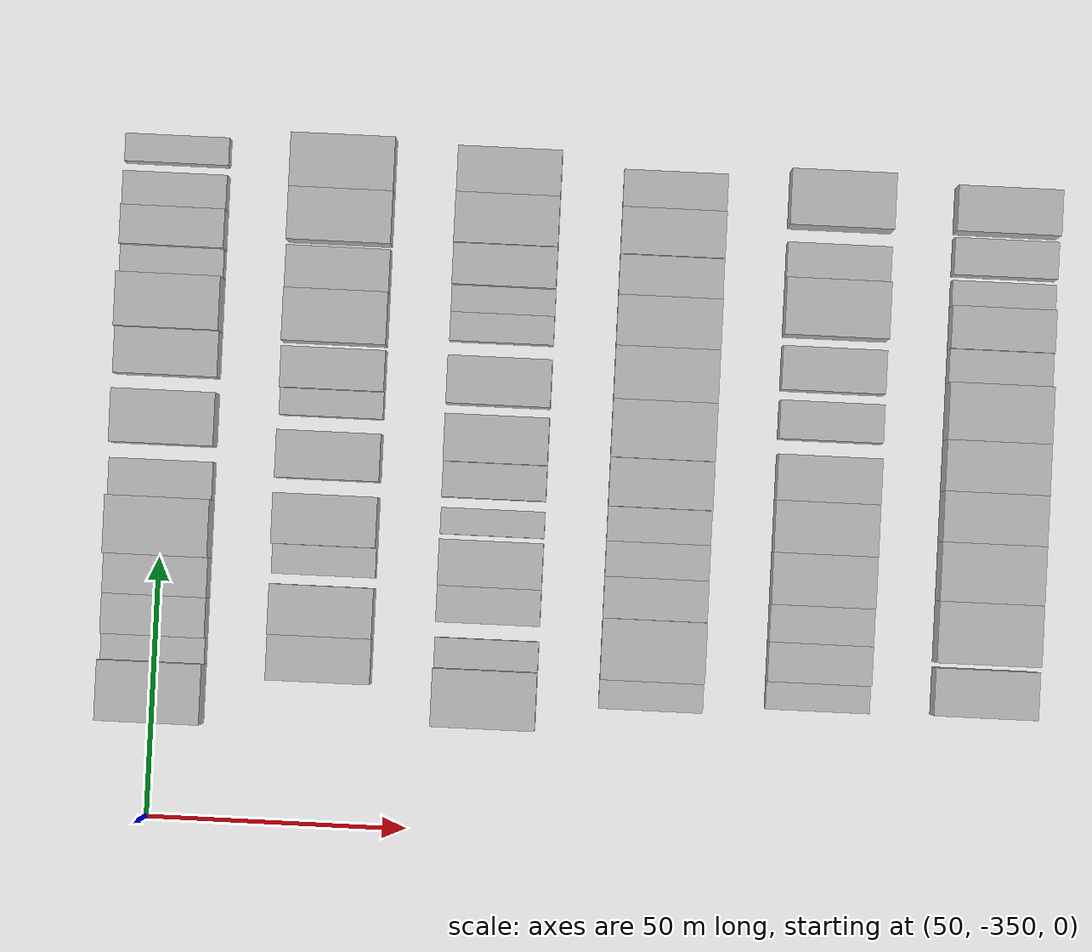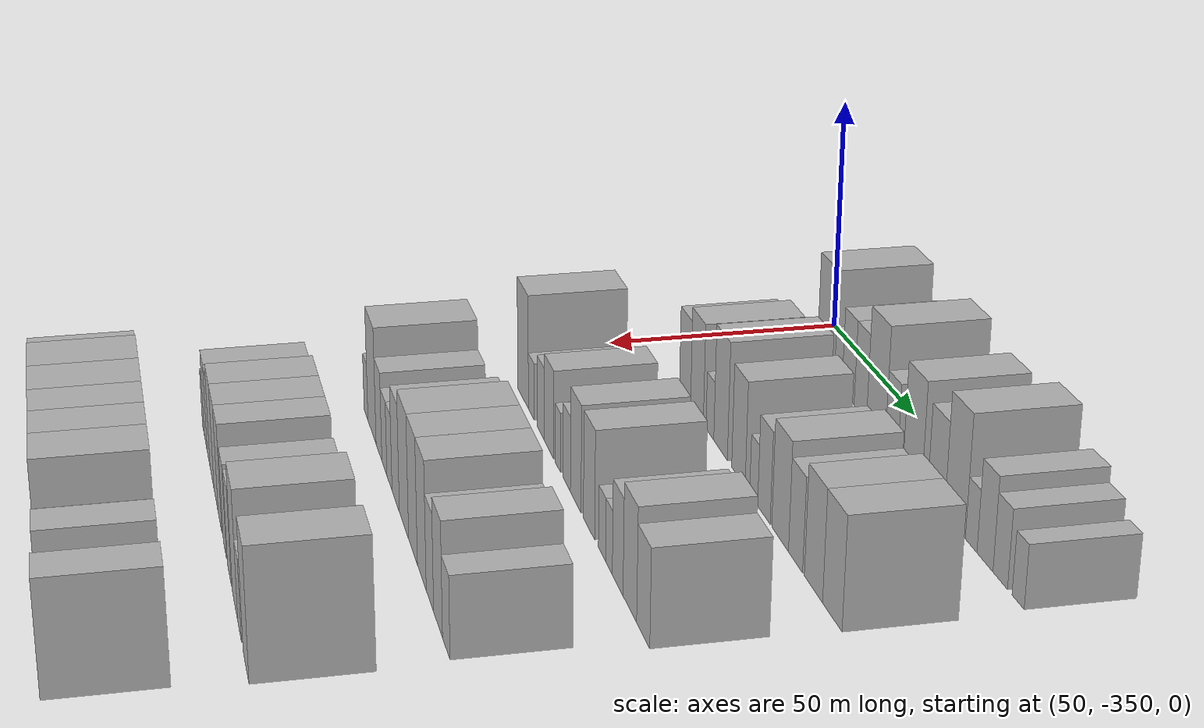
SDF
<sdf version="1.6">
 <world name="default">
  <model name="building_24">
   <static>1</static>
   <pose>50.0000 -325.7760 0 0.000000 0.000000 0.000000</pose>
   <link name="link">
    <pose>0 0 12.00 0 0 0</pose>
    <collision name="collision"><geometry><box><size>20.0000 11.5945 24.0000</size></box></geometry></collision>
    <visual name="visual">
     <cast_shadows>0</cast_shadows>
     <geometry><box><size>20.0000 11.5945 24.0000</size></box></geometry>
     <material>
      <script>
       <uri>model://HANNAS_wall/materials/scripts</uri>
       <uri>model://HANNAS_wall/materials/textures</uri>
       <name>vrc/HANNAS_wall</name>
      </script>
     </material>
    </visual>
   </link>
  </model>
  <model name="building_25">
   <static>1</static>
   <pose>50.0000 -317.4945 0 0.000000 0.000000 0.000000</pose>
   <link name="link">
    <pose>0 0 6.00 0 0 0</pose>
    <collision name="collision"><geometry><box><size>20.0000 4.9685 12.0000</size></box></geometry></collision>
    <visual name="visual">
     <cast_shadows>0</cast_shadows>
     <geometry><box><size>20.0000 4.9685 12.0000</size></box></geometry>
     <material>
      <script>
       <uri>model://HANNAS_wall/materials/scripts</uri>
       <uri>model://HANNAS_wall/materials/textures</uri>
       <name>vrc/HANNAS_wall</name>
      </script>
     </material>
    </visual>
   </link>
  </model>
  <model name="building_26">
   <static>1</static>
   <pose>50.0000 -311.1380 0 0.000000 0.000000 0.000000</pose>
   <link name="link">
    <pose>0 0 9.00 0 0 0</pose>
    <collision name="collision"><geometry><box><size>20.0000 7.7444 18.0000</size></box></geometry></collision>
    <visual name="visual">
     <cast_shadows>0</cast_shadows>
     <geometry><box><size>20.0000 7.7444 18.0000</size></box></geometry>
     <material>
      <script>
       <uri>model://HANNAS_wall/materials/scripts</uri>
       <uri>model://HANNAS_wall/materials/textures</uri>
       <name>vrc/HANNAS_wall</name>
      </script>
     </material>
    </visual>
   </link>
  </model>
  <model name="building_27">
   <static>1</static>
   <pose>50.0000 -303.4338 0 0.000000 0.000000 0.000000</pose>
   <link name="link">
    <pose>0 0 9.00 0 0 0</pose>
    <collision name="collision"><geometry><box><size>20.0000 7.6640 18.0000</size></box></geometry></collision>
    <visual name="visual">
     <cast_shadows>0</cast_shadows>
     <geometry><box><size>20.0000 7.6640 18.0000</size></box></geometry>
     <material>
      <script>
       <uri>model://HANNAS_wall/materials/scripts</uri>
       <uri>model://HANNAS_wall/materials/textures</uri>
       <name>vrc/HANNAS_wall</name>
      </script>
     </material>
    </visual>
   </link>
  </model>
  <model name="building_28">
   <static>1</static>
   <pose>50.0000 -294.0374 0 0.000000 0.000000 0.000000</pose>
   <link name="link">
    <pose>0 0 12.00 0 0 0</pose>
    <collision name="collision"><geometry><box><size>20.0000 11.1289 24.0000</size></box></geometry></collision>
    <visual name="visual">
     <cast_shadows>0</cast_shadows>
     <geometry><box><size>20.0000 11.1289 24.0000</size></box></geometry>
     <material>
      <script>
       <uri>model://HANNAS_wall/materials/scripts</uri>
       <uri>model://HANNAS_wall/materials/textures</uri>
       <name>vrc/HANNAS_wall</name>
      </script>
     </material>
    </visual>
   </link>
  </model>
  <model name="building_29">
   <static>1</static>
   <pose>50.0000 -284.8770 0 0.000000 0.000000 0.000000</pose>
   <link name="link">
    <pose>0 0 7.50 0 0 0</pose>
    <collision name="collision"><geometry><box><size>20.0000 7.1919 15.0000</size></box></geometry></collision>
    <visual name="visual">
     <cast_shadows>0</cast_shadows>
     <geometry><box><size>20.0000 7.1919 15.0000</size></box></geometry>
     <material>
      <script>
       <uri>model://HANNAS_wall/materials/scripts</uri>
       <uri>model://HANNAS_wall/materials/textures</uri>
       <name>vrc/HANNAS_wall</name>
      </script>
     </material>
    </visual>
   </link>
  </model>
  <model name="building_30">
   <static>1</static>
   <pose>50.0000 -273.1539 0 0.000000 0.000000 0.000000</pose>
   <link name="link">
    <pose>0 0 10.50 0 0 0</pose>
    <collision name="collision"><geometry><box><size>20.0000 10.2542 21.0000</size></box></geometry></collision>
    <visual name="visual">
     <cast_shadows>0</cast_shadows>
     <geometry><box><size>20.0000 10.2542 21.0000</size></box></geometry>
     <material>
      <script>
       <uri>model://HANNAS_wall/materials/scripts</uri>
       <uri>model://HANNAS_wall/materials/textures</uri>
       <name>vrc/HANNAS_wall</name>
      </script>
     </material>
    </visual>
   </link>
  </model>
  <model name="building_31">
   <static>1</static>
   <pose>50.0000 -260.6110 0 0.000000 0.000000 0.000000</pose>
   <link name="link">
    <pose>0 0 9.00 0 0 0</pose>
    <collision name="collision"><geometry><box><size>20.0000 8.8316 18.0000</size></box></geometry></collision>
    <visual name="visual">
     <cast_shadows>0</cast_shadows>
     <geometry><box><size>20.0000 8.8316 18.0000</size></box></geometry>
     <material>
      <script>
       <uri>model://HANNAS_wall/materials/scripts</uri>
       <uri>model://HANNAS_wall/materials/textures</uri>
       <name>vrc/HANNAS_wall</name>
      </script>
     </material>
    </visual>
   </link>
  </model>
  <model name="building_32">
   <static>1</static>
   <pose>50.0000 -251.0286 0 0.000000 0.000000 0.000000</pose>
   <link name="link">
    <pose>0 0 12.00 0 0 0</pose>
    <collision name="collision"><geometry><box><size>20.0000 10.3332 24.0000</size></box></geometry></collision>
    <visual name="visual">
     <cast_shadows>0</cast_shadows>
     <geometry><box><size>20.0000 10.3332 24.0000</size></box></geometry>
     <material>
      <script>
       <uri>model://HANNAS_wall/materials/scripts</uri>
       <uri>model://HANNAS_wall/materials/textures</uri>
       <name>vrc/HANNAS_wall</name>
      </script>
     </material>
    </visual>
   </link>
  </model>
  <model name="building_33">
   <static>1</static>
   <pose>50.0000 -243.0790 0 0.000000 0.000000 0.000000</pose>
   <link name="link">
    <pose>0 0 6.00 0 0 0</pose>
    <collision name="collision"><geometry><box><size>20.0000 5.5659 12.0000</size></box></geometry></collision>
    <visual name="visual">
     <cast_shadows>0</cast_shadows>
     <geometry><box><size>20.0000 5.5659 12.0000</size></box></geometry>
     <material>
      <script>
       <uri>model://HANNAS_wall/materials/scripts</uri>
       <uri>model://HANNAS_wall/materials/textures</uri>
       <name>vrc/HANNAS_wall</name>
      </script>
     </material>
    </visual>
   </link>
  </model>
  <model name="building_34">
   <static>1</static>
   <pose>50.0000 -236.5503 0 0.000000 0.000000 0.000000</pose>
   <link name="link">
    <pose>0 0 9.00 0 0 0</pose>
    <collision name="collision"><geometry><box><size>20.0000 7.4915 18.0000</size></box></geometry></collision>
    <visual name="visual">
     <cast_shadows>0</cast_shadows>
     <geometry><box><size>20.0000 7.4915 18.0000</size></box></geometry>
     <material>
      <script>
       <uri>model://HANNAS_wall/materials/scripts</uri>
       <uri>model://HANNAS_wall/materials/textures</uri>
       <name>vrc/HANNAS_wall</name>
      </script>
     </material>
    </visual>
   </link>
  </model>
  <model name="building_35">
   <static>1</static>
   <pose>50.0000 -229.5090 0 0.000000 0.000000 0.000000</pose>
   <link name="link">
    <pose>0 0 7.50 0 0 0</pose>
    <collision name="collision"><geometry><box><size>20.0000 6.5911 15.0000</size></box></geometry></collision>
    <visual name="visual">
     <cast_shadows>0</cast_shadows>
     <geometry><box><size>20.0000 6.5911 15.0000</size></box></geometry>
     <material>
      <script>
       <uri>model://HANNAS_wall/materials/scripts</uri>
       <uri>model://HANNAS_wall/materials/textures</uri>
       <name>vrc/HANNAS_wall</name>
      </script>
     </material>
    </visual>
   </link>
  </model>
  <model name="building_36">
   <static>1</static>
   <pose>50.0000 -221.5522 0 0.000000 0.000000 0.000000</pose>
   <link name="link">
    <pose>0 0 6.00 0 0 0</pose>
    <collision name="collision"><geometry><box><size>20.0000 5.3224 12.0000</size></box></geometry></collision>
    <visual name="visual">
     <cast_shadows>0</cast_shadows>
     <geometry><box><size>20.0000 5.3224 12.0000</size></box></geometry>
     <material>
      <script>
       <uri>model://HANNAS_wall/materials/scripts</uri>
       <uri>model://HANNAS_wall/materials/textures</uri>
       <name>vrc/HANNAS_wall</name>
      </script>
     </material>
    </visual>
   </link>
  </model>
  <model name="building_147">
   <static>1</static>
   <pose>82.0000 -318.0060 0 0.000000 0.000000 0.000000</pose>
   <link name="link">
    <pose>0 0 9.00 0 0 0</pose>
    <collision name="collision"><geometry><box><size>20.0000 8.7626 18.0000</size></box></geometry></collision>
    <visual name="visual">
     <cast_shadows>0</cast_shadows>
     <geometry><box><size>20.0000 8.7626 18.0000</size></box></geometry>
     <material>
      <script>
       <uri>model://HANNAS_wall/materials/scripts</uri>
       <uri>model://HANNAS_wall/materials/textures</uri>
       <name>vrc/HANNAS_wall</name>
      </script>
     </material>
    </visual>
   </link>
  </model>
  <model name="building_148">
   <static>1</static>
   <pose>82.0000 -308.7873 0 0.000000 0.000000 0.000000</pose>
   <link name="link">
    <pose>0 0 10.50 0 0 0</pose>
    <collision name="collision"><geometry><box><size>20.0000 9.6747 21.0000</size></box></geometry></collision>
    <visual name="visual">
     <cast_shadows>0</cast_shadows>
     <geometry><box><size>20.0000 9.6747 21.0000</size></box></geometry>
     <material>
      <script>
       <uri>model://HANNAS_wall/materials/scripts</uri>
       <uri>model://HANNAS_wall/materials/textures</uri>
       <name>vrc/HANNAS_wall</name>
      </script>
     </material>
    </visual>
   </link>
  </model>
  <model name="building_149">
   <static>1</static>
   <pose>82.0000 -299.0927 0 0.000000 0.000000 0.000000</pose>
   <link name="link">
    <pose>0 0 6.00 0 0 0</pose>
    <collision name="collision"><geometry><box><size>20.0000 5.7146 12.0000</size></box></geometry></collision>
    <visual name="visual">
     <cast_shadows>0</cast_shadows>
     <geometry><box><size>20.0000 5.7146 12.0000</size></box></geometry>
     <material>
      <script>
       <uri>model://HANNAS_wall/materials/scripts</uri>
       <uri>model://HANNAS_wall/materials/textures</uri>
       <name>vrc/HANNAS_wall</name>
      </script>
     </material>
    </visual>
   </link>
  </model>
  <model name="building_150">
   <static>1</static>
   <pose>82.0000 -291.3906 0 0.000000 0.000000 0.000000</pose>
   <link name="link">
    <pose>0 0 12.00 0 0 0</pose>
    <collision name="collision"><geometry><box><size>20.0000 9.6897 24.0000</size></box></geometry></collision>
    <visual name="visual">
     <cast_shadows>0</cast_shadows>
     <geometry><box><size>20.0000 9.6897 24.0000</size></box></geometry>
     <material>
      <script>
       <uri>model://HANNAS_wall/materials/scripts</uri>
       <uri>model://HANNAS_wall/materials/textures</uri>
       <name>vrc/HANNAS_wall</name>
      </script>
     </material>
    </visual>
   </link>
  </model>
  <model name="building_151">
   <static>1</static>
   <pose>82.0000 -278.9891 0 0.000000 0.000000 0.000000</pose>
   <link name="link">
    <pose>0 0 10.50 0 0 0</pose>
    <collision name="collision"><geometry><box><size>20.0000 9.1133 21.0000</size></box></geometry></collision>
    <visual name="visual">
     <cast_shadows>0</cast_shadows>
     <geometry><box><size>20.0000 9.1133 21.0000</size></box></geometry>
     <material>
      <script>
       <uri>model://HANNAS_wall/materials/scripts</uri>
       <uri>model://HANNAS_wall/materials/textures</uri>
       <name>vrc/HANNAS_wall</name>
      </script>
     </material>
    </visual>
   </link>
  </model>
  <model name="building_152">
   <static>1</static>
   <pose>82.0000 -268.8483 0 0.000000 0.000000 0.000000</pose>
   <link name="link">
    <pose>0 0 6.00 0 0 0</pose>
    <collision name="collision"><geometry><box><size>20.0000 5.1683 12.0000</size></box></geometry></collision>
    <visual name="visual">
     <cast_shadows>0</cast_shadows>
     <geometry><box><size>20.0000 5.1683 12.0000</size></box></geometry>
     <material>
      <script>
       <uri>model://HANNAS_wall/materials/scripts</uri>
       <uri>model://HANNAS_wall/materials/textures</uri>
       <name>vrc/HANNAS_wall</name>
      </script>
     </material>
    </visual>
   </link>
  </model>
  <model name="building_153">
   <static>1</static>
   <pose>82.0000 -262.3096 0 0.000000 0.000000 0.000000</pose>
   <link name="link">
    <pose>0 0 9.00 0 0 0</pose>
    <collision name="collision"><geometry><box><size>20.0000 7.9090 18.0000</size></box></geometry></collision>
    <visual name="visual">
     <cast_shadows>0</cast_shadows>
     <geometry><box><size>20.0000 7.9090 18.0000</size></box></geometry>
     <material>
      <script>
       <uri>model://HANNAS_wall/materials/scripts</uri>
       <uri>model://HANNAS_wall/materials/textures</uri>
       <name>vrc/HANNAS_wall</name>
      </script>
     </material>
    </visual>
   </link>
  </model>
  <model name="building_154">
   <static>1</static>
   <pose>82.0000 -252.2941 0 0.000000 0.000000 0.000000</pose>
   <link name="link">
    <pose>0 0 10.50 0 0 0</pose>
    <collision name="collision"><geometry><box><size>20.0000 10.1221 21.0000</size></box></geometry></collision>
    <visual name="visual">
     <cast_shadows>0</cast_shadows>
     <geometry><box><size>20.0000 10.1221 21.0000</size></box></geometry>
     <material>
      <script>
       <uri>model://HANNAS_wall/materials/scripts</uri>
       <uri>model://HANNAS_wall/materials/textures</uri>
       <name>vrc/HANNAS_wall</name>
      </script>
     </material>
    </visual>
   </link>
  </model>
  <model name="building_155">
   <static>1</static>
   <pose>82.0000 -243.1228 0 0.000000 0.000000 0.000000</pose>
   <link name="link">
    <pose>0 0 9.00 0 0 0</pose>
    <collision name="collision"><geometry><box><size>20.0000 8.2204 18.0000</size></box></geometry></collision>
    <visual name="visual">
     <cast_shadows>0</cast_shadows>
     <geometry><box><size>20.0000 8.2204 18.0000</size></box></geometry>
     <material>
      <script>
       <uri>model://HANNAS_wall/materials/scripts</uri>
       <uri>model://HANNAS_wall/materials/textures</uri>
       <name>vrc/HANNAS_wall</name>
      </script>
     </material>
    </visual>
   </link>
  </model>
  <model name="building_156">
   <static>1</static>
   <pose>82.0000 -232.9565 0 0.000000 0.000000 0.000000</pose>
   <link name="link">
    <pose>0 0 10.50 0 0 0</pose>
    <collision name="collision"><geometry><box><size>20.0000 10.1122 21.0000</size></box></geometry></collision>
    <visual name="visual">
     <cast_shadows>0</cast_shadows>
     <geometry><box><size>20.0000 10.1122 21.0000</size></box></geometry>
     <material>
      <script>
       <uri>model://HANNAS_wall/materials/scripts</uri>
       <uri>model://HANNAS_wall/materials/textures</uri>
       <name>vrc/HANNAS_wall</name>
      </script>
     </material>
    </visual>
   </link>
  </model>
  <model name="building_157">
   <static>1</static>
   <pose>82.0000 -222.7397 0 0.000000 0.000000 0.000000</pose>
   <link name="link">
    <pose>0 0 10.50 0 0 0</pose>
    <collision name="collision"><geometry><box><size>20.0000 10.3216 21.0000</size></box></geometry></collision>
    <visual name="visual">
     <cast_shadows>0</cast_shadows>
     <geometry><box><size>20.0000 10.3216 21.0000</size></box></geometry>
     <material>
      <script>
       <uri>model://HANNAS_wall/materials/scripts</uri>
       <uri>model://HANNAS_wall/materials/textures</uri>
       <name>vrc/HANNAS_wall</name>
      </script>
     </material>
    </visual>
   </link>
  </model>
  <model name="building_269">
   <static>1</static>
   <pose>114.0000 -324.0901 0 0.000000 0.000000 0.000000</pose>
   <link name="link">
    <pose>0 0 12.00 0 0 0</pose>
    <collision name="collision"><geometry><box><size>20.0000 11.1359 24.0000</size></box></geometry></collision>
    <visual name="visual">
     <cast_shadows>0</cast_shadows>
     <geometry><box><size>20.0000 11.1359 24.0000</size></box></geometry>
     <material>
      <script>
       <uri>model://HANNAS_wall/materials/scripts</uri>
       <uri>model://HANNAS_wall/materials/textures</uri>
       <name>vrc/HANNAS_wall</name>
      </script>
     </material>
    </visual>
   </link>
  </model>
  <model name="building_270">
   <static>1</static>
   <pose>114.0000 -315.6091 0 0.000000 0.000000 0.000000</pose>
   <link name="link">
    <pose>0 0 6.00 0 0 0</pose>
    <collision name="collision"><geometry><box><size>20.0000 5.8260 12.0000</size></box></geometry></collision>
    <visual name="visual">
     <cast_shadows>0</cast_shadows>
     <geometry><box><size>20.0000 5.8260 12.0000</size></box></geometry>
     <material>
      <script>
       <uri>model://HANNAS_wall/materials/scripts</uri>
       <uri>model://HANNAS_wall/materials/textures</uri>
       <name>vrc/HANNAS_wall</name>
      </script>
     </material>
    </visual>
   </link>
  </model>
  <model name="building_271">
   <static>1</static>
   <pose>114.0000 -306.1959 0 0.000000 0.000000 0.000000</pose>
   <link name="link">
    <pose>0 0 7.50 0 0 0</pose>
    <collision name="collision"><geometry><box><size>20.0000 7.0005 15.0000</size></box></geometry></collision>
    <visual name="visual">
     <cast_shadows>0</cast_shadows>
     <geometry><box><size>20.0000 7.0005 15.0000</size></box></geometry>
     <material>
      <script>
       <uri>model://HANNAS_wall/materials/scripts</uri>
       <uri>model://HANNAS_wall/materials/textures</uri>
       <name>vrc/HANNAS_wall</name>
      </script>
     </material>
    </visual>
   </link>
  </model>
  <model name="building_272">
   <static>1</static>
   <pose>114.0000 -298.2511 0 0.000000 0.000000 0.000000</pose>
   <link name="link">
    <pose>0 0 9.00 0 0 0</pose>
    <collision name="collision"><geometry><box><size>20.0000 8.8891 18.0000</size></box></geometry></collision>
    <visual name="visual">
     <cast_shadows>0</cast_shadows>
     <geometry><box><size>20.0000 8.8891 18.0000</size></box></geometry>
     <material>
      <script>
       <uri>model://HANNAS_wall/materials/scripts</uri>
       <uri>model://HANNAS_wall/materials/textures</uri>
       <name>vrc/HANNAS_wall</name>
      </script>
     </material>
    </visual>
   </link>
  </model>
  <model name="building_273">
   <static>1</static>
   <pose>114.0000 -290.2604 0 0.000000 0.000000 0.000000</pose>
   <link name="link">
    <pose>0 0 6.00 0 0 0</pose>
    <collision name="collision"><geometry><box><size>20.0000 5.0923 12.0000</size></box></geometry></collision>
    <visual name="visual">
     <cast_shadows>0</cast_shadows>
     <geometry><box><size>20.0000 5.0923 12.0000</size></box></geometry>
     <material>
      <script>
       <uri>model://HANNAS_wall/materials/scripts</uri>
       <uri>model://HANNAS_wall/materials/textures</uri>
       <name>vrc/HANNAS_wall</name>
      </script>
     </material>
    </visual>
   </link>
  </model>
  <model name="building_274">
   <static>1</static>
   <pose>114.0000 -282.3144 0 0.000000 0.000000 0.000000</pose>
   <link name="link">
    <pose>0 0 7.50 0 0 0</pose>
    <collision name="collision"><geometry><box><size>20.0000 6.7995 15.0000</size></box></geometry></collision>
    <visual name="visual">
     <cast_shadows>0</cast_shadows>
     <geometry><box><size>20.0000 6.7995 15.0000</size></box></geometry>
     <material>
      <script>
       <uri>model://HANNAS_wall/materials/scripts</uri>
       <uri>model://HANNAS_wall/materials/textures</uri>
       <name>vrc/HANNAS_wall</name>
      </script>
     </material>
    </visual>
   </link>
  </model>
  <model name="building_275">
   <static>1</static>
   <pose>114.0000 -274.3603 0 0.000000 0.000000 0.000000</pose>
   <link name="link">
    <pose>0 0 10.50 0 0 0</pose>
    <collision name="collision"><geometry><box><size>20.0000 9.1087 21.0000</size></box></geometry></collision>
    <visual name="visual">
     <cast_shadows>0</cast_shadows>
     <geometry><box><size>20.0000 9.1087 21.0000</size></box></geometry>
     <material>
      <script>
       <uri>model://HANNAS_wall/materials/scripts</uri>
       <uri>model://HANNAS_wall/materials/textures</uri>
       <name>vrc/HANNAS_wall</name>
      </script>
     </material>
    </visual>
   </link>
  </model>
  <model name="building_276">
   <static>1</static>
   <pose>114.0000 -263.2259 0 0.000000 0.000000 0.000000</pose>
   <link name="link">
    <pose>0 0 10.50 0 0 0</pose>
    <collision name="collision"><geometry><box><size>20.0000 9.1601 21.0000</size></box></geometry></collision>
    <visual name="visual">
     <cast_shadows>0</cast_shadows>
     <geometry><box><size>20.0000 9.1601 21.0000</size></box></geometry>
     <material>
      <script>
       <uri>model://HANNAS_wall/materials/scripts</uri>
       <uri>model://HANNAS_wall/materials/textures</uri>
       <name>vrc/HANNAS_wall</name>
      </script>
     </material>
    </visual>
   </link>
  </model>
  <model name="building_277">
   <static>1</static>
   <pose>114.0000 -252.8734 0 0.000000 0.000000 0.000000</pose>
   <link name="link">
    <pose>0 0 6.00 0 0 0</pose>
    <collision name="collision"><geometry><box><size>20.0000 5.5448 12.0000</size></box></geometry></collision>
    <visual name="visual">
     <cast_shadows>0</cast_shadows>
     <geometry><box><size>20.0000 5.5448 12.0000</size></box></geometry>
     <material>
      <script>
       <uri>model://HANNAS_wall/materials/scripts</uri>
       <uri>model://HANNAS_wall/materials/textures</uri>
       <name>vrc/HANNAS_wall</name>
      </script>
     </material>
    </visual>
   </link>
  </model>
  <model name="building_278">
   <static>1</static>
   <pose>114.0000 -247.5273 0 0.000000 0.000000 0.000000</pose>
   <link name="link">
    <pose>0 0 6.00 0 0 0</pose>
    <collision name="collision"><geometry><box><size>20.0000 5.1475 12.0000</size></box></geometry></collision>
    <visual name="visual">
     <cast_shadows>0</cast_shadows>
     <geometry><box><size>20.0000 5.1475 12.0000</size></box></geometry>
     <material>
      <script>
       <uri>model://HANNAS_wall/materials/scripts</uri>
       <uri>model://HANNAS_wall/materials/textures</uri>
       <name>vrc/HANNAS_wall</name>
      </script>
     </material>
    </visual>
   </link>
  </model>
  <model name="building_279">
   <static>1</static>
   <pose>114.0000 -240.9968 0 0.000000 0.000000 0.000000</pose>
   <link name="link">
    <pose>0 0 9.00 0 0 0</pose>
    <collision name="collision"><geometry><box><size>20.0000 7.9136 18.0000</size></box></geometry></collision>
    <visual name="visual">
     <cast_shadows>0</cast_shadows>
     <geometry><box><size>20.0000 7.9136 18.0000</size></box></geometry>
     <material>
      <script>
       <uri>model://HANNAS_wall/materials/scripts</uri>
       <uri>model://HANNAS_wall/materials/textures</uri>
       <name>vrc/HANNAS_wall</name>
      </script>
     </material>
    </visual>
   </link>
  </model>
  <model name="building_280">
   <static>1</static>
   <pose>114.0000 -232.2082 0 0.000000 0.000000 0.000000</pose>
   <link name="link">
    <pose>0 0 10.50 0 0 0</pose>
    <collision name="collision"><geometry><box><size>20.0000 9.6635 21.0000</size></box></geometry></collision>
    <visual name="visual">
     <cast_shadows>0</cast_shadows>
     <geometry><box><size>20.0000 9.6635 21.0000</size></box></geometry>
     <material>
      <script>
       <uri>model://HANNAS_wall/materials/scripts</uri>
       <uri>model://HANNAS_wall/materials/textures</uri>
       <name>vrc/HANNAS_wall</name>
      </script>
     </material>
    </visual>
   </link>
  </model>
  <model name="building_281">
   <static>1</static>
   <pose>114.0000 -222.9036 0 0.000000 0.000000 0.000000</pose>
   <link name="link">
    <pose>0 0 9.00 0 0 0</pose>
    <collision name="collision"><geometry><box><size>20.0000 8.9457 18.0000</size></box></geometry></collision>
    <visual name="visual">
     <cast_shadows>0</cast_shadows>
     <geometry><box><size>20.0000 8.9457 18.0000</size></box></geometry>
     <material>
      <script>
       <uri>model://HANNAS_wall/materials/scripts</uri>
       <uri>model://HANNAS_wall/materials/textures</uri>
       <name>vrc/HANNAS_wall</name>
      </script>
     </material>
    </visual>
   </link>
  </model>
  <model name="building_383">
   <static>1</static>
   <pose>146.0000 -321.9743 0 0.000000 0.000000 0.000000</pose>
   <link name="link">
    <pose>0 0 6.00 0 0 0</pose>
    <collision name="collision"><geometry><box><size>20.0000 5.6771 12.0000</size></box></geometry></collision>
    <visual name="visual">
     <cast_shadows>0</cast_shadows>
     <geometry><box><size>20.0000 5.6771 12.0000</size></box></geometry>
     <material>
      <script>
       <uri>model://HANNAS_wall/materials/scripts</uri>
       <uri>model://HANNAS_wall/materials/textures</uri>
       <name>vrc/HANNAS_wall</name>
      </script>
     </material>
    </visual>
   </link>
  </model>
  <model name="building_384">
   <static>1</static>
   <pose>146.0000 -313.2667 0 0.000000 0.000000 0.000000</pose>
   <link name="link">
    <pose>0 0 12.00 0 0 0</pose>
    <collision name="collision"><geometry><box><size>20.0000 11.7381 24.0000</size></box></geometry></collision>
    <visual name="visual">
     <cast_shadows>0</cast_shadows>
     <geometry><box><size>20.0000 11.7381 24.0000</size></box></geometry>
     <material>
      <script>
       <uri>model://HANNAS_wall/materials/scripts</uri>
       <uri>model://HANNAS_wall/materials/textures</uri>
       <name>vrc/HANNAS_wall</name>
      </script>
     </material>
    </visual>
   </link>
  </model>
  <model name="building_385">
   <static>1</static>
   <pose>146.0000 -303.4073 0 0.000000 0.000000 0.000000</pose>
   <link name="link">
    <pose>0 0 9.00 0 0 0</pose>
    <collision name="collision"><geometry><box><size>20.0000 7.9807 18.0000</size></box></geometry></collision>
    <visual name="visual">
     <cast_shadows>0</cast_shadows>
     <geometry><box><size>20.0000 7.9807 18.0000</size></box></geometry>
     <material>
      <script>
       <uri>model://HANNAS_wall/materials/scripts</uri>
       <uri>model://HANNAS_wall/materials/textures</uri>
       <name>vrc/HANNAS_wall</name>
      </script>
     </material>
    </visual>
   </link>
  </model>
  <model name="building_386">
   <static>1</static>
   <pose>146.0000 -296.0037 0 0.000000 0.000000 0.000000</pose>
   <link name="link">
    <pose>0 0 7.50 0 0 0</pose>
    <collision name="collision"><geometry><box><size>20.0000 6.8265 15.0000</size></box></geometry></collision>
    <visual name="visual">
     <cast_shadows>0</cast_shadows>
     <geometry><box><size>20.0000 6.8265 15.0000</size></box></geometry>
     <material>
      <script>
       <uri>model://HANNAS_wall/materials/scripts</uri>
       <uri>model://HANNAS_wall/materials/textures</uri>
       <name>vrc/HANNAS_wall</name>
      </script>
     </material>
    </visual>
   </link>
  </model>
  <model name="building_387">
   <static>1</static>
   <pose>146.0000 -289.2825 0 0.000000 0.000000 0.000000</pose>
   <link name="link">
    <pose>0 0 7.50 0 0 0</pose>
    <collision name="collision"><geometry><box><size>20.0000 6.6161 15.0000</size></box></geometry></collision>
    <visual name="visual">
     <cast_shadows>0</cast_shadows>
     <geometry><box><size>20.0000 6.6161 15.0000</size></box></geometry>
     <material>
      <script>
       <uri>model://HANNAS_wall/materials/scripts</uri>
       <uri>model://HANNAS_wall/materials/textures</uri>
       <name>vrc/HANNAS_wall</name>
      </script>
     </material>
    </visual>
   </link>
  </model>
  <model name="building_388">
   <static>1</static>
   <pose>146.0000 -281.3084 0 0.000000 0.000000 0.000000</pose>
   <link name="link">
    <pose>0 0 10.50 0 0 0</pose>
    <collision name="collision"><geometry><box><size>20.0000 9.3321 21.0000</size></box></geometry></collision>
    <visual name="visual">
     <cast_shadows>0</cast_shadows>
     <geometry><box><size>20.0000 9.3321 21.0000</size></box></geometry>
     <material>
      <script>
       <uri>model://HANNAS_wall/materials/scripts</uri>
       <uri>model://HANNAS_wall/materials/textures</uri>
       <name>vrc/HANNAS_wall</name>
      </script>
     </material>
    </visual>
   </link>
  </model>
  <model name="building_389">
   <static>1</static>
   <pose>146.0000 -271.0627 0 0.000000 0.000000 0.000000</pose>
   <link name="link">
    <pose>0 0 12.00 0 0 0</pose>
    <collision name="collision"><geometry><box><size>20.0000 11.1592 24.0000</size></box></geometry></collision>
    <visual name="visual">
     <cast_shadows>0</cast_shadows>
     <geometry><box><size>20.0000 11.1592 24.0000</size></box></geometry>
     <material>
      <script>
       <uri>model://HANNAS_wall/materials/scripts</uri>
       <uri>model://HANNAS_wall/materials/textures</uri>
       <name>vrc/HANNAS_wall</name>
      </script>
     </material>
    </visual>
   </link>
  </model>
  <model name="building_390">
   <static>1</static>
   <pose>146.0000 -260.3905 0 0.000000 0.000000 0.000000</pose>
   <link name="link">
    <pose>0 0 12.00 0 0 0</pose>
    <collision name="collision"><geometry><box><size>20.0000 10.1852 24.0000</size></box></geometry></collision>
    <visual name="visual">
     <cast_shadows>0</cast_shadows>
     <geometry><box><size>20.0000 10.1852 24.0000</size></box></geometry>
     <material>
      <script>
       <uri>model://HANNAS_wall/materials/scripts</uri>
       <uri>model://HANNAS_wall/materials/textures</uri>
       <name>vrc/HANNAS_wall</name>
      </script>
     </material>
    </visual>
   </link>
  </model>
  <model name="building_391">
   <static>1</static>
   <pose>146.0000 -250.4460 0 0.000000 0.000000 0.000000</pose>
   <link name="link">
    <pose>0 0 12.00 0 0 0</pose>
    <collision name="collision"><geometry><box><size>20.0000 9.7036 24.0000</size></box></geometry></collision>
    <visual name="visual">
     <cast_shadows>0</cast_shadows>
     <geometry><box><size>20.0000 9.7036 24.0000</size></box></geometry>
     <material>
      <script>
       <uri>model://HANNAS_wall/materials/scripts</uri>
       <uri>model://HANNAS_wall/materials/textures</uri>
       <name>vrc/HANNAS_wall</name>
      </script>
     </material>
    </visual>
   </link>
  </model>
  <model name="building_392">
   <static>1</static>
   <pose>146.0000 -241.6604 0 0.000000 0.000000 0.000000</pose>
   <link name="link">
    <pose>0 0 9.00 0 0 0</pose>
    <collision name="collision"><geometry><box><size>20.0000 7.8678 18.0000</size></box></geometry></collision>
    <visual name="visual">
     <cast_shadows>0</cast_shadows>
     <geometry><box><size>20.0000 7.8678 18.0000</size></box></geometry>
     <material>
      <script>
       <uri>model://HANNAS_wall/materials/scripts</uri>
       <uri>model://HANNAS_wall/materials/textures</uri>
       <name>vrc/HANNAS_wall</name>
      </script>
     </material>
    </visual>
   </link>
  </model>
  <model name="building_393">
   <static>1</static>
   <pose>146.0000 -233.2150 0 0.000000 0.000000 0.000000</pose>
   <link name="link">
    <pose>0 0 10.50 0 0 0</pose>
    <collision name="collision"><geometry><box><size>20.0000 9.0230 21.0000</size></box></geometry></collision>
    <visual name="visual">
     <cast_shadows>0</cast_shadows>
     <geometry><box><size>20.0000 9.0230 21.0000</size></box></geometry>
     <material>
      <script>
       <uri>model://HANNAS_wall/materials/scripts</uri>
       <uri>model://HANNAS_wall/materials/textures</uri>
       <name>vrc/HANNAS_wall</name>
      </script>
     </material>
    </visual>
   </link>
  </model>
  <model name="building_394">
   <static>1</static>
   <pose>146.0000 -225.0099 0 0.000000 0.000000 0.000000</pose>
   <link name="link">
    <pose>0 0 7.50 0 0 0</pose>
    <collision name="collision"><geometry><box><size>20.0000 7.3872 15.0000</size></box></geometry></collision>
    <visual name="visual">
     <cast_shadows>0</cast_shadows>
     <geometry><box><size>20.0000 7.3872 15.0000</size></box></geometry>
     <material>
      <script>
       <uri>model://HANNAS_wall/materials/scripts</uri>
       <uri>model://HANNAS_wall/materials/textures</uri>
       <name>vrc/HANNAS_wall</name>
      </script>
     </material>
    </visual>
   </link>
  </model>
  <model name="building_507">
   <static>1</static>
   <pose>178.0000 -320.6850 0 0.000000 0.000000 0.000000</pose>
   <link name="link">
    <pose>0 0 6.00 0 0 0</pose>
    <collision name="collision"><geometry><box><size>20.0000 5.3364 12.0000</size></box></geometry></collision>
    <visual name="visual">
     <cast_shadows>0</cast_shadows>
     <geometry><box><size>20.0000 5.3364 12.0000</size></box></geometry>
     <material>
      <script>
       <uri>model://HANNAS_wall/materials/scripts</uri>
       <uri>model://HANNAS_wall/materials/textures</uri>
       <name>vrc/HANNAS_wall</name>
      </script>
     </material>
    </visual>
   </link>
  </model>
  <model name="building_508">
   <static>1</static>
   <pose>178.0000 -314.2213 0 0.000000 0.000000 0.000000</pose>
   <link name="link">
    <pose>0 0 9.00 0 0 0</pose>
    <collision name="collision"><geometry><box><size>20.0000 7.5909 18.0000</size></box></geometry></collision>
    <visual name="visual">
     <cast_shadows>0</cast_shadows>
     <geometry><box><size>20.0000 7.5909 18.0000</size></box></geometry>
     <material>
      <script>
       <uri>model://HANNAS_wall/materials/scripts</uri>
       <uri>model://HANNAS_wall/materials/textures</uri>
       <name>vrc/HANNAS_wall</name>
      </script>
     </material>
    </visual>
   </link>
  </model>
  <model name="building_509">
   <static>1</static>
   <pose>178.0000 -306.8215 0 0.000000 0.000000 0.000000</pose>
   <link name="link">
    <pose>0 0 9.00 0 0 0</pose>
    <collision name="collision"><geometry><box><size>20.0000 7.2088 18.0000</size></box></geometry></collision>
    <visual name="visual">
     <cast_shadows>0</cast_shadows>
     <geometry><box><size>20.0000 7.2088 18.0000</size></box></geometry>
     <material>
      <script>
       <uri>model://HANNAS_wall/materials/scripts</uri>
       <uri>model://HANNAS_wall/materials/textures</uri>
       <name>vrc/HANNAS_wall</name>
      </script>
     </material>
    </visual>
   </link>
  </model>
  <model name="building_510">
   <static>1</static>
   <pose>178.0000 -298.2429 0 0.000000 0.000000 0.000000</pose>
   <link name="link">
    <pose>0 0 10.50 0 0 0</pose>
    <collision name="collision"><geometry><box><size>20.0000 9.9484 21.0000</size></box></geometry></collision>
    <visual name="visual">
     <cast_shadows>0</cast_shadows>
     <geometry><box><size>20.0000 9.9484 21.0000</size></box></geometry>
     <material>
      <script>
       <uri>model://HANNAS_wall/materials/scripts</uri>
       <uri>model://HANNAS_wall/materials/textures</uri>
       <name>vrc/HANNAS_wall</name>
      </script>
     </material>
    </visual>
   </link>
  </model>
  <model name="building_511">
   <static>1</static>
   <pose>178.0000 -288.2768 0 0.000000 0.000000 0.000000</pose>
   <link name="link">
    <pose>0 0 10.50 0 0 0</pose>
    <collision name="collision"><geometry><box><size>20.0000 9.9838 21.0000</size></box></geometry></collision>
    <visual name="visual">
     <cast_shadows>0</cast_shadows>
     <geometry><box><size>20.0000 9.9838 21.0000</size></box></geometry>
     <material>
      <script>
       <uri>model://HANNAS_wall/materials/scripts</uri>
       <uri>model://HANNAS_wall/materials/textures</uri>
       <name>vrc/HANNAS_wall</name>
      </script>
     </material>
    </visual>
   </link>
  </model>
  <model name="building_512">
   <static>1</static>
   <pose>178.0000 -278.8826 0 0.000000 0.000000 0.000000</pose>
   <link name="link">
    <pose>0 0 10.50 0 0 0</pose>
    <collision name="collision"><geometry><box><size>20.0000 8.8045 21.0000</size></box></geometry></collision>
    <visual name="visual">
     <cast_shadows>0</cast_shadows>
     <geometry><box><size>20.0000 8.8045 21.0000</size></box></geometry>
     <material>
      <script>
       <uri>model://HANNAS_wall/materials/scripts</uri>
       <uri>model://HANNAS_wall/materials/textures</uri>
       <name>vrc/HANNAS_wall</name>
      </script>
     </material>
    </visual>
   </link>
  </model>
  <model name="building_513">
   <static>1</static>
   <pose>178.0000 -267.7829 0 0.000000 0.000000 0.000000</pose>
   <link name="link">
    <pose>0 0 9.00 0 0 0</pose>
    <collision name="collision"><geometry><box><size>20.0000 7.3949 18.0000</size></box></geometry></collision>
    <visual name="visual">
     <cast_shadows>0</cast_shadows>
     <geometry><box><size>20.0000 7.3949 18.0000</size></box></geometry>
     <material>
      <script>
       <uri>model://HANNAS_wall/materials/scripts</uri>
       <uri>model://HANNAS_wall/materials/textures</uri>
       <name>vrc/HANNAS_wall</name>
      </script>
     </material>
    </visual>
   </link>
  </model>
  <model name="building_514">
   <static>1</static>
   <pose>178.0000 -257.8776 0 0.000000 0.000000 0.000000</pose>
   <link name="link">
    <pose>0 0 9.00 0 0 0</pose>
    <collision name="collision"><geometry><box><size>20.0000 8.4157 18.0000</size></box></geometry></collision>
    <visual name="visual">
     <cast_shadows>0</cast_shadows>
     <geometry><box><size>20.0000 8.4157 18.0000</size></box></geometry>
     <material>
      <script>
       <uri>model://HANNAS_wall/materials/scripts</uri>
       <uri>model://HANNAS_wall/materials/textures</uri>
       <name>vrc/HANNAS_wall</name>
      </script>
     </material>
    </visual>
   </link>
  </model>
  <model name="building_515">
   <static>1</static>
   <pose>178.0000 -246.1997 0 0.000000 0.000000 0.000000</pose>
   <link name="link">
    <pose>0 0 12.00 0 0 0</pose>
    <collision name="collision"><geometry><box><size>20.0000 10.9401 24.0000</size></box></geometry></collision>
    <visual name="visual">
     <cast_shadows>0</cast_shadows>
     <geometry><box><size>20.0000 10.9401 24.0000</size></box></geometry>
     <material>
      <script>
       <uri>model://HANNAS_wall/materials/scripts</uri>
       <uri>model://HANNAS_wall/materials/textures</uri>
       <name>vrc/HANNAS_wall</name>
      </script>
     </material>
    </visual>
   </link>
  </model>
  <model name="building_516">
   <static>1</static>
   <pose>178.0000 -237.2208 0 0.000000 0.000000 0.000000</pose>
   <link name="link">
    <pose>0 0 7.50 0 0 0</pose>
    <collision name="collision"><geometry><box><size>20.0000 7.0178 15.0000</size></box></geometry></collision>
    <visual name="visual">
     <cast_shadows>0</cast_shadows>
     <geometry><box><size>20.0000 7.0178 15.0000</size></box></geometry>
     <material>
      <script>
       <uri>model://HANNAS_wall/materials/scripts</uri>
       <uri>model://HANNAS_wall/materials/textures</uri>
       <name>vrc/HANNAS_wall</name>
      </script>
     </material>
    </visual>
   </link>
  </model>
  <model name="building_517">
   <static>1</static>
   <pose>178.0000 -225.3491 0 0.000000 0.000000 0.000000</pose>
   <link name="link">
    <pose>0 0 12.00 0 0 0</pose>
    <collision name="collision"><geometry><box><size>20.0000 10.7256 24.0000</size></box></geometry></collision>
    <visual name="visual">
     <cast_shadows>0</cast_shadows>
     <geometry><box><size>20.0000 10.7256 24.0000</size></box></geometry>
     <material>
      <script>
       <uri>model://HANNAS_wall/materials/scripts</uri>
       <uri>model://HANNAS_wall/materials/textures</uri>
       <name>vrc/HANNAS_wall</name>
      </script>
     </material>
    </visual>
   </link>
  </model>
  <model name="building_626">
   <static>1</static>
   <pose>210.0000 -318.4030 0 0.000000 0.000000 0.000000</pose>
   <link name="link">
    <pose>0 0 10.50 0 0 0</pose>
    <collision name="collision"><geometry><box><size>20.0000 9.1597 21.0000</size></box></geometry></collision>
    <visual name="visual">
     <cast_shadows>0</cast_shadows>
     <geometry><box><size>20.0000 9.1597 21.0000</size></box></geometry>
     <material>
      <script>
       <uri>model://HANNAS_wall/materials/scripts</uri>
       <uri>model://HANNAS_wall/materials/textures</uri>
       <name>vrc/HANNAS_wall</name>
      </script>
     </material>
    </visual>
   </link>
  </model>
  <model name="building_627">
   <static>1</static>
   <pose>210.0000 -306.9310 0 0.000000 0.000000 0.000000</pose>
   <link name="link">
    <pose>0 0 12.00 0 0 0</pose>
    <collision name="collision"><geometry><box><size>20.0000 11.7844 24.0000</size></box></geometry></collision>
    <visual name="visual">
     <cast_shadows>0</cast_shadows>
     <geometry><box><size>20.0000 11.7844 24.0000</size></box></geometry>
     <material>
      <script>
       <uri>model://HANNAS_wall/materials/scripts</uri>
       <uri>model://HANNAS_wall/materials/textures</uri>
       <name>vrc/HANNAS_wall</name>
      </script>
     </material>
    </visual>
   </link>
  </model>
  <model name="building_628">
   <static>1</static>
   <pose>210.0000 -295.3835 0 0.000000 0.000000 0.000000</pose>
   <link name="link">
    <pose>0 0 12.00 0 0 0</pose>
    <collision name="collision"><geometry><box><size>20.0000 11.3104 24.0000</size></box></geometry></collision>
    <visual name="visual">
     <cast_shadows>0</cast_shadows>
     <geometry><box><size>20.0000 11.3104 24.0000</size></box></geometry>
     <material>
      <script>
       <uri>model://HANNAS_wall/materials/scripts</uri>
       <uri>model://HANNAS_wall/materials/textures</uri>
       <name>vrc/HANNAS_wall</name>
      </script>
     </material>
    </visual>
   </link>
  </model>
  <model name="building_629">
   <static>1</static>
   <pose>210.0000 -284.8690 0 0.000000 0.000000 0.000000</pose>
   <link name="link">
    <pose>0 0 12.00 0 0 0</pose>
    <collision name="collision"><geometry><box><size>20.0000 9.7186 24.0000</size></box></geometry></collision>
    <visual name="visual">
     <cast_shadows>0</cast_shadows>
     <geometry><box><size>20.0000 9.7186 24.0000</size></box></geometry>
     <material>
      <script>
       <uri>model://HANNAS_wall/materials/scripts</uri>
       <uri>model://HANNAS_wall/materials/textures</uri>
       <name>vrc/HANNAS_wall</name>
      </script>
     </material>
    </visual>
   </link>
  </model>
  <model name="building_630">
   <static>1</static>
   <pose>210.0000 -275.1089 0 0.000000 0.000000 0.000000</pose>
   <link name="link">
    <pose>0 0 12.00 0 0 0</pose>
    <collision name="collision"><geometry><box><size>20.0000 9.8017 24.0000</size></box></geometry></collision>
    <visual name="visual">
     <cast_shadows>0</cast_shadows>
     <geometry><box><size>20.0000 9.8017 24.0000</size></box></geometry>
     <material>
      <script>
       <uri>model://HANNAS_wall/materials/scripts</uri>
       <uri>model://HANNAS_wall/materials/textures</uri>
       <name>vrc/HANNAS_wall</name>
      </script>
     </material>
    </visual>
   </link>
  </model>
  <model name="building_631">
   <static>1</static>
   <pose>210.0000 -264.7155 0 0.000000 0.000000 0.000000</pose>
   <link name="link">
    <pose>0 0 12.00 0 0 0</pose>
    <collision name="collision"><geometry><box><size>20.0000 10.9851 24.0000</size></box></geometry></collision>
    <visual name="visual">
     <cast_shadows>0</cast_shadows>
     <geometry><box><size>20.0000 10.9851 24.0000</size></box></geometry>
     <material>
      <script>
       <uri>model://HANNAS_wall/materials/scripts</uri>
       <uri>model://HANNAS_wall/materials/textures</uri>
       <name>vrc/HANNAS_wall</name>
      </script>
     </material>
    </visual>
   </link>
  </model>
  <model name="building_632">
   <static>1</static>
   <pose>210.0000 -255.9399 0 0.000000 0.000000 0.000000</pose>
   <link name="link">
    <pose>0 0 7.50 0 0 0</pose>
    <collision name="collision"><geometry><box><size>20.0000 6.5659 15.0000</size></box></geometry></collision>
    <visual name="visual">
     <cast_shadows>0</cast_shadows>
     <geometry><box><size>20.0000 6.5659 15.0000</size></box></geometry>
     <material>
      <script>
       <uri>model://HANNAS_wall/materials/scripts</uri>
       <uri>model://HANNAS_wall/materials/textures</uri>
       <name>vrc/HANNAS_wall</name>
      </script>
     </material>
    </visual>
   </link>
  </model>
  <model name="building_633">
   <static>1</static>
   <pose>210.0000 -248.5375 0 0.000000 0.000000 0.000000</pose>
   <link name="link">
    <pose>0 0 9.00 0 0 0</pose>
    <collision name="collision"><geometry><box><size>20.0000 8.2388 18.0000</size></box></geometry></collision>
    <visual name="visual">
     <cast_shadows>0</cast_shadows>
     <geometry><box><size>20.0000 8.2388 18.0000</size></box></geometry>
     <material>
      <script>
       <uri>model://HANNAS_wall/materials/scripts</uri>
       <uri>model://HANNAS_wall/materials/textures</uri>
       <name>vrc/HANNAS_wall</name>
      </script>
     </material>
    </visual>
   </link>
  </model>
  <model name="building_634">
   <static>1</static>
   <pose>210.0000 -241.9240 0 0.000000 0.000000 0.000000</pose>
   <link name="link">
    <pose>0 0 6.00 0 0 0</pose>
    <collision name="collision"><geometry><box><size>20.0000 4.9882 12.0000</size></box></geometry></collision>
    <visual name="visual">
     <cast_shadows>0</cast_shadows>
     <geometry><box><size>20.0000 4.9882 12.0000</size></box></geometry>
     <material>
      <script>
       <uri>model://HANNAS_wall/materials/scripts</uri>
       <uri>model://HANNAS_wall/materials/textures</uri>
       <name>vrc/HANNAS_wall</name>
      </script>
     </material>
    </visual>
   </link>
  </model>
  <model name="building_635">
   <static>1</static>
   <pose>210.0000 -234.8586 0 0.000000 0.000000 0.000000</pose>
   <link name="link">
    <pose>0 0 7.50 0 0 0</pose>
    <collision name="collision"><geometry><box><size>20.0000 7.1427 15.0000</size></box></geometry></collision>
    <visual name="visual">
     <cast_shadows>0</cast_shadows>
     <geometry><box><size>20.0000 7.1427 15.0000</size></box></geometry>
     <material>
      <script>
       <uri>model://HANNAS_wall/materials/scripts</uri>
       <uri>model://HANNAS_wall/materials/textures</uri>
       <name>vrc/HANNAS_wall</name>
      </script>
     </material>
    </visual>
   </link>
  </model>
  <model name="building_636">
   <static>1</static>
   <pose>210.0000 -225.8980 0 0.000000 0.000000 0.000000</pose>
   <link name="link">
    <pose>0 0 10.50 0 0 0</pose>
    <collision name="collision"><geometry><box><size>20.0000 8.7784 21.0000</size></box></geometry></collision>
    <visual name="visual">
     <cast_shadows>0</cast_shadows>
     <geometry><box><size>20.0000 8.7784 21.0000</size></box></geometry>
     <material>
      <script>
       <uri>model://HANNAS_wall/materials/scripts</uri>
       <uri>model://HANNAS_wall/materials/textures</uri>
       <name>vrc/HANNAS_wall</name>
      </script>
     </material>
    </visual>
   </link>
  </model>
 </world>
</sdf>
